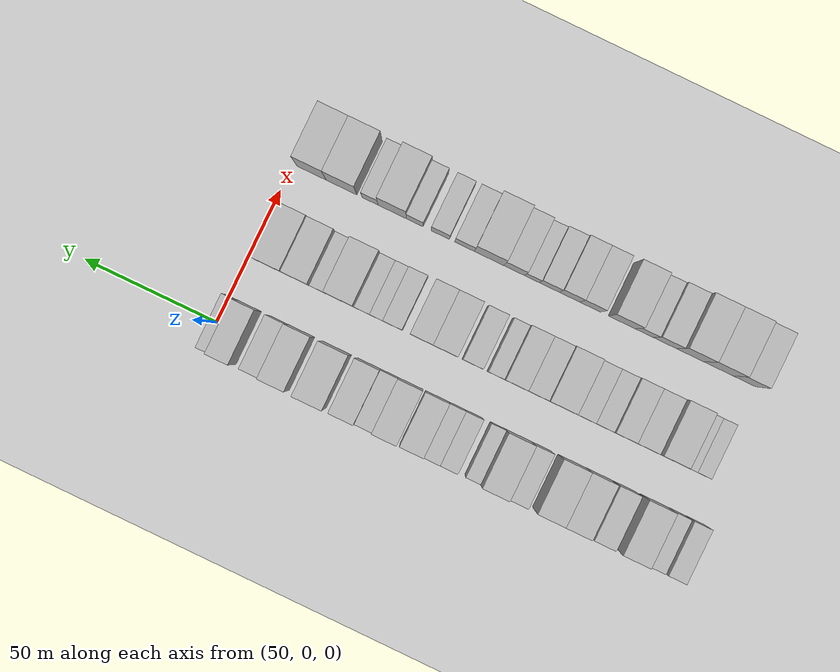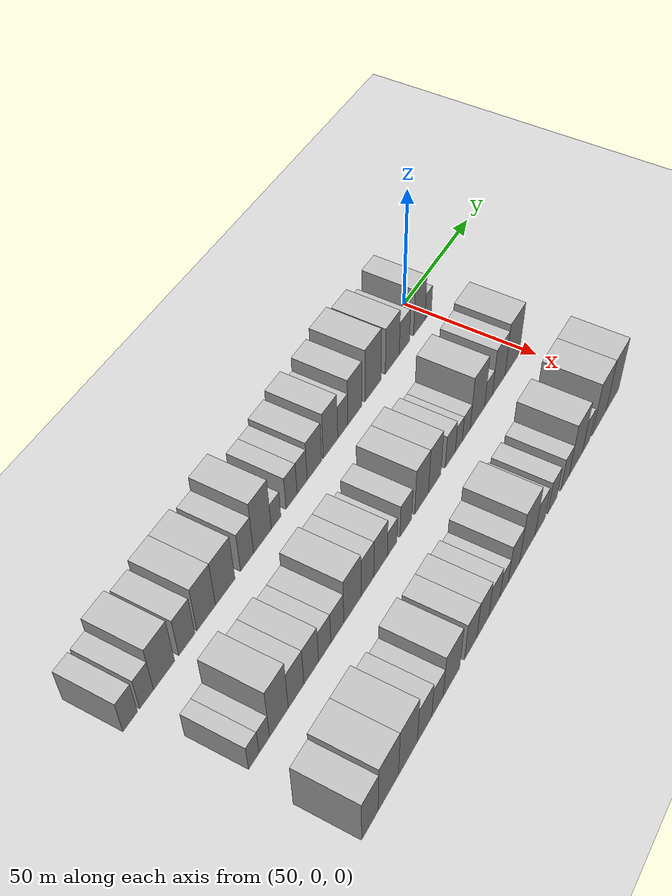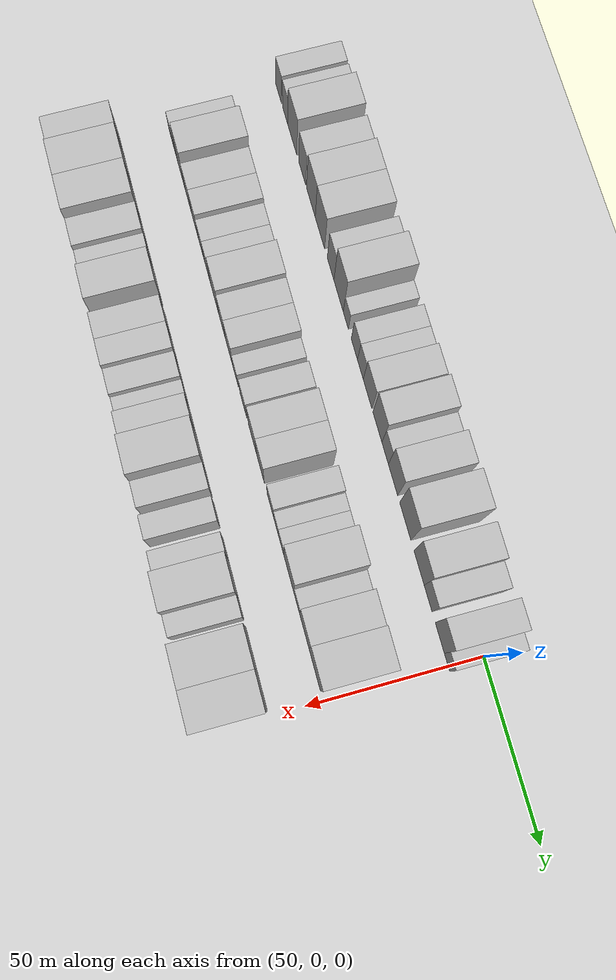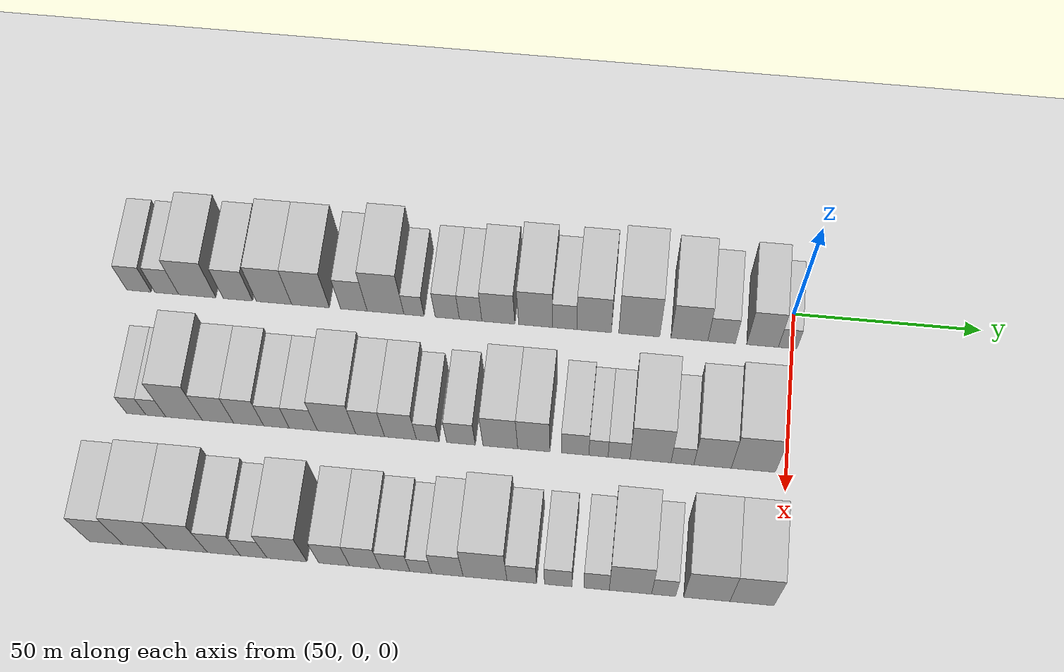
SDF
<sdf version="1.6">
 <world name="default">
  <include><name>ground_plane_1</name><uri>model://HANNAS_ground_plane</uri></include>
  <model name="building_21">
   <static>1</static>
   <pose>50.0000 -176.3457 0 0.000000 0.000000 0.000000</pose>
   <link name="link">
    <pose>0 0 7.50 0 0 0</pose>
    <collision name="collision"><geometry><box><size>20.0000 6.6882 15.0000</size></box></geometry></collision>
    <visual name="visual">
     <cast_shadows>0</cast_shadows>
     <geometry><box><size>20.0000 6.6882 15.0000</size></box></geometry>
     <material>
      <script>
       <uri>model://HANNAS_wall/materials/scripts</uri>
       <uri>model://HANNAS_wall/materials/textures</uri>
       <name>vrc/HANNAS_wall</name>
      </script>
     </material>
    </visual>
   </link>
  </model>
  <model name="building_22">
   <static>1</static>
   <pose>50.0000 -168.7545 0 0.000000 0.000000 0.000000</pose>
   <link name="link">
    <pose>0 0 7.50 0 0 0</pose>
    <collision name="collision"><geometry><box><size>20.0000 6.4942 15.0000</size></box></geometry></collision>
    <visual name="visual">
     <cast_shadows>0</cast_shadows>
     <geometry><box><size>20.0000 6.4942 15.0000</size></box></geometry>
     <material>
      <script>
       <uri>model://HANNAS_wall/materials/scripts</uri>
       <uri>model://HANNAS_wall/materials/textures</uri>
       <name>vrc/HANNAS_wall</name>
      </script>
     </material>
    </visual>
   </link>
  </model>
  <model name="building_23">
   <static>1</static>
   <pose>50.0000 -160.4246 0 0.000000 0.000000 0.000000</pose>
   <link name="link">
    <pose>0 0 10.50 0 0 0</pose>
    <collision name="collision"><geometry><box><size>20.0000 10.1656 21.0000</size></box></geometry></collision>
    <visual name="visual">
     <cast_shadows>0</cast_shadows>
     <geometry><box><size>20.0000 10.1656 21.0000</size></box></geometry>
     <material>
      <script>
       <uri>model://HANNAS_wall/materials/scripts</uri>
       <uri>model://HANNAS_wall/materials/textures</uri>
       <name>vrc/HANNAS_wall</name>
      </script>
     </material>
    </visual>
   </link>
  </model>
  <model name="building_24">
   <static>1</static>
   <pose>50.0000 -149.3165 0 0.000000 0.000000 0.000000</pose>
   <link name="link">
    <pose>0 0 9.00 0 0 0</pose>
    <collision name="collision"><geometry><box><size>20.0000 8.0506 18.0000</size></box></geometry></collision>
    <visual name="visual">
     <cast_shadows>0</cast_shadows>
     <geometry><box><size>20.0000 8.0506 18.0000</size></box></geometry>
     <material>
      <script>
       <uri>model://HANNAS_wall/materials/scripts</uri>
       <uri>model://HANNAS_wall/materials/textures</uri>
       <name>vrc/HANNAS_wall</name>
      </script>
     </material>
    </visual>
   </link>
  </model>
  <model name="building_25">
   <static>1</static>
   <pose>50.0000 -139.4782 0 0.000000 0.000000 0.000000</pose>
   <link name="link">
    <pose>0 0 10.50 0 0 0</pose>
    <collision name="collision"><geometry><box><size>20.0000 9.6259 21.0000</size></box></geometry></collision>
    <visual name="visual">
     <cast_shadows>0</cast_shadows>
     <geometry><box><size>20.0000 9.6259 21.0000</size></box></geometry>
     <material>
      <script>
       <uri>model://HANNAS_wall/materials/scripts</uri>
       <uri>model://HANNAS_wall/materials/textures</uri>
       <name>vrc/HANNAS_wall</name>
      </script>
     </material>
    </visual>
   </link>
  </model>
  <model name="building_26">
   <static>1</static>
   <pose>50.0000 -129.5304 0 0.000000 0.000000 0.000000</pose>
   <link name="link">
    <pose>0 0 10.50 0 0 0</pose>
    <collision name="collision"><geometry><box><size>20.0000 10.2697 21.0000</size></box></geometry></collision>
    <visual name="visual">
     <cast_shadows>0</cast_shadows>
     <geometry><box><size>20.0000 10.2697 21.0000</size></box></geometry>
     <material>
      <script>
       <uri>model://HANNAS_wall/materials/scripts</uri>
       <uri>model://HANNAS_wall/materials/textures</uri>
       <name>vrc/HANNAS_wall</name>
      </script>
     </material>
    </visual>
   </link>
  </model>
  <model name="building_27">
   <static>1</static>
   <pose>50.0000 -117.7776 0 0.000000 0.000000 0.000000</pose>
   <link name="link">
    <pose>0 0 9.00 0 0 0</pose>
    <collision name="collision"><geometry><box><size>20.0000 7.2359 18.0000</size></box></geometry></collision>
    <visual name="visual">
     <cast_shadows>0</cast_shadows>
     <geometry><box><size>20.0000 7.2359 18.0000</size></box></geometry>
     <material>
      <script>
       <uri>model://HANNAS_wall/materials/scripts</uri>
       <uri>model://HANNAS_wall/materials/textures</uri>
       <name>vrc/HANNAS_wall</name>
      </script>
     </material>
    </visual>
   </link>
  </model>
  <model name="building_28">
   <static>1</static>
   <pose>50.0000 -109.1883 0 0.000000 0.000000 0.000000</pose>
   <link name="link">
    <pose>0 0 12.00 0 0 0</pose>
    <collision name="collision"><geometry><box><size>20.0000 9.9427 24.0000</size></box></geometry></collision>
    <visual name="visual">
     <cast_shadows>0</cast_shadows>
     <geometry><box><size>20.0000 9.9427 24.0000</size></box></geometry>
     <material>
      <script>
       <uri>model://HANNAS_wall/materials/scripts</uri>
       <uri>model://HANNAS_wall/materials/textures</uri>
       <name>vrc/HANNAS_wall</name>
      </script>
     </material>
    </visual>
   </link>
  </model>
  <model name="building_29">
   <static>1</static>
   <pose>50.0000 -101.4819 0 0.000000 0.000000 0.000000</pose>
   <link name="link">
    <pose>0 0 6.00 0 0 0</pose>
    <collision name="collision"><geometry><box><size>20.0000 5.4701 12.0000</size></box></geometry></collision>
    <visual name="visual">
     <cast_shadows>0</cast_shadows>
     <geometry><box><size>20.0000 5.4701 12.0000</size></box></geometry>
     <material>
      <script>
       <uri>model://HANNAS_wall/materials/scripts</uri>
       <uri>model://HANNAS_wall/materials/textures</uri>
       <name>vrc/HANNAS_wall</name>
      </script>
     </material>
    </visual>
   </link>
  </model>
  <model name="building_30">
   <static>1</static>
   <pose>50.0000 -92.4810 0 0.000000 0.000000 0.000000</pose>
   <link name="link">
    <pose>0 0 7.50 0 0 0</pose>
    <collision name="collision"><geometry><box><size>20.0000 6.5315 15.0000</size></box></geometry></collision>
    <visual name="visual">
     <cast_shadows>0</cast_shadows>
     <geometry><box><size>20.0000 6.5315 15.0000</size></box></geometry>
     <material>
      <script>
       <uri>model://HANNAS_wall/materials/scripts</uri>
       <uri>model://HANNAS_wall/materials/textures</uri>
       <name>vrc/HANNAS_wall</name>
      </script>
     </material>
    </visual>
   </link>
  </model>
  <model name="building_31">
   <static>1</static>
   <pose>50.0000 -86.1803 0 0.000000 0.000000 0.000000</pose>
   <link name="link">
    <pose>0 0 7.50 0 0 0</pose>
    <collision name="collision"><geometry><box><size>20.0000 6.0698 15.0000</size></box></geometry></collision>
    <visual name="visual">
     <cast_shadows>0</cast_shadows>
     <geometry><box><size>20.0000 6.0698 15.0000</size></box></geometry>
     <material>
      <script>
       <uri>model://HANNAS_wall/materials/scripts</uri>
       <uri>model://HANNAS_wall/materials/textures</uri>
       <name>vrc/HANNAS_wall</name>
      </script>
     </material>
    </visual>
   </link>
  </model>
  <model name="building_32">
   <static>1</static>
   <pose>50.0000 -78.6908 0 0.000000 0.000000 0.000000</pose>
   <link name="link">
    <pose>0 0 9.00 0 0 0</pose>
    <collision name="collision"><geometry><box><size>20.0000 8.9093 18.0000</size></box></geometry></collision>
    <visual name="visual">
     <cast_shadows>0</cast_shadows>
     <geometry><box><size>20.0000 8.9093 18.0000</size></box></geometry>
     <material>
      <script>
       <uri>model://HANNAS_wall/materials/scripts</uri>
       <uri>model://HANNAS_wall/materials/textures</uri>
       <name>vrc/HANNAS_wall</name>
      </script>
     </material>
    </visual>
   </link>
  </model>
  <model name="building_33">
   <static>1</static>
   <pose>50.0000 -68.6561 0 0.000000 0.000000 0.000000</pose>
   <link name="link">
    <pose>0 0 10.50 0 0 0</pose>
    <collision name="collision"><geometry><box><size>20.0000 9.1600 21.0000</size></box></geometry></collision>
    <visual name="visual">
     <cast_shadows>0</cast_shadows>
     <geometry><box><size>20.0000 9.1600 21.0000</size></box></geometry>
     <material>
      <script>
       <uri>model://HANNAS_wall/materials/scripts</uri>
       <uri>model://HANNAS_wall/materials/textures</uri>
       <name>vrc/HANNAS_wall</name>
      </script>
     </material>
    </visual>
   </link>
  </model>
  <model name="building_34">
   <static>1</static>
   <pose>50.0000 -60.8174 0 0.000000 0.000000 0.000000</pose>
   <link name="link">
    <pose>0 0 7.50 0 0 0</pose>
    <collision name="collision"><geometry><box><size>20.0000 6.5175 15.0000</size></box></geometry></collision>
    <visual name="visual">
     <cast_shadows>0</cast_shadows>
     <geometry><box><size>20.0000 6.5175 15.0000</size></box></geometry>
     <material>
      <script>
       <uri>model://HANNAS_wall/materials/scripts</uri>
       <uri>model://HANNAS_wall/materials/textures</uri>
       <name>vrc/HANNAS_wall</name>
      </script>
     </material>
    </visual>
   </link>
  </model>
  <model name="building_35">
   <static>1</static>
   <pose>50.0000 -52.9513 0 0.000000 0.000000 0.000000</pose>
   <link name="link">
    <pose>0 0 10.50 0 0 0</pose>
    <collision name="collision"><geometry><box><size>20.0000 9.2147 21.0000</size></box></geometry></collision>
    <visual name="visual">
     <cast_shadows>0</cast_shadows>
     <geometry><box><size>20.0000 9.2147 21.0000</size></box></geometry>
     <material>
      <script>
       <uri>model://HANNAS_wall/materials/scripts</uri>
       <uri>model://HANNAS_wall/materials/textures</uri>
       <name>vrc/HANNAS_wall</name>
      </script>
     </material>
    </visual>
   </link>
  </model>
  <model name="building_36">
   <static>1</static>
   <pose>50.0000 -40.8622 0 0.000000 0.000000 0.000000</pose>
   <link name="link">
    <pose>0 0 12.00 0 0 0</pose>
    <collision name="collision"><geometry><box><size>20.0000 10.9633 24.0000</size></box></geometry></collision>
    <visual name="visual">
     <cast_shadows>0</cast_shadows>
     <geometry><box><size>20.0000 10.9633 24.0000</size></box></geometry>
     <material>
      <script>
       <uri>model://HANNAS_wall/materials/scripts</uri>
       <uri>model://HANNAS_wall/materials/textures</uri>
       <name>vrc/HANNAS_wall</name>
      </script>
     </material>
    </visual>
   </link>
  </model>
  <model name="building_37">
   <static>1</static>
   <pose>50.0000 -27.4583 0 0.000000 0.000000 0.000000</pose>
   <link name="link">
    <pose>0 0 10.50 0 0 0</pose>
    <collision name="collision"><geometry><box><size>20.0000 9.8445 21.0000</size></box></geometry></collision>
    <visual name="visual">
     <cast_shadows>0</cast_shadows>
     <geometry><box><size>20.0000 9.8445 21.0000</size></box></geometry>
     <material>
      <script>
       <uri>model://HANNAS_wall/materials/scripts</uri>
       <uri>model://HANNAS_wall/materials/textures</uri>
       <name>vrc/HANNAS_wall</name>
      </script>
     </material>
    </visual>
   </link>
  </model>
  <model name="building_38">
   <static>1</static>
   <pose>50.0000 -18.8467 0 0.000000 0.000000 0.000000</pose>
   <link name="link">
    <pose>0 0 7.50 0 0 0</pose>
    <collision name="collision"><geometry><box><size>20.0000 7.3786 15.0000</size></box></geometry></collision>
    <visual name="visual">
     <cast_shadows>0</cast_shadows>
     <geometry><box><size>20.0000 7.3786 15.0000</size></box></geometry>
     <material>
      <script>
       <uri>model://HANNAS_wall/materials/scripts</uri>
       <uri>model://HANNAS_wall/materials/textures</uri>
       <name>vrc/HANNAS_wall</name>
      </script>
     </material>
    </visual>
   </link>
  </model>
  <model name="building_39">
   <static>1</static>
   <pose>50.0000 -7.9230 0 0.000000 0.000000 0.000000</pose>
   <link name="link">
    <pose>0 0 10.50 0 0 0</pose>
    <collision name="collision"><geometry><box><size>20.0000 8.4687 21.0000</size></box></geometry></collision>
    <visual name="visual">
     <cast_shadows>0</cast_shadows>
     <geometry><box><size>20.0000 8.4687 21.0000</size></box></geometry>
     <material>
      <script>
       <uri>model://HANNAS_wall/materials/scripts</uri>
       <uri>model://HANNAS_wall/materials/textures</uri>
       <name>vrc/HANNAS_wall</name>
      </script>
     </material>
    </visual>
   </link>
  </model>
  <model name="building_40">
   <static>1</static>
   <pose>50.0000 -1.2210 0 0.000000 0.000000 0.000000</pose>
   <link name="link">
    <pose>0 0 6.00 0 0 0</pose>
    <collision name="collision"><geometry><box><size>20.0000 4.9352 12.0000</size></box></geometry></collision>
    <visual name="visual">
     <cast_shadows>0</cast_shadows>
     <geometry><box><size>20.0000 4.9352 12.0000</size></box></geometry>
     <material>
      <script>
       <uri>model://HANNAS_wall/materials/scripts</uri>
       <uri>model://HANNAS_wall/materials/textures</uri>
       <name>vrc/HANNAS_wall</name>
      </script>
     </material>
    </visual>
   </link>
  </model>
  <model name="building_100">
   <static>1</static>
   <pose>85.0000 -170.1183 0 0.000000 0.000000 0.000000</pose>
   <link name="link">
    <pose>0 0 6.00 0 0 0</pose>
    <collision name="collision"><geometry><box><size>20.0000 5.1869 12.0000</size></box></geometry></collision>
    <visual name="visual">
     <cast_shadows>0</cast_shadows>
     <geometry><box><size>20.0000 5.1869 12.0000</size></box></geometry>
     <material>
      <script>
       <uri>model://HANNAS_wall/materials/scripts</uri>
       <uri>model://HANNAS_wall/materials/textures</uri>
       <name>vrc/HANNAS_wall</name>
      </script>
     </material>
    </visual>
   </link>
  </model>
  <model name="building_101">
   <static>1</static>
   <pose>85.0000 -164.9028 0 0.000000 0.000000 0.000000</pose>
   <link name="link">
    <pose>0 0 6.00 0 0 0</pose>
    <collision name="collision"><geometry><box><size>20.0000 5.2442 12.0000</size></box></geometry></collision>
    <visual name="visual">
     <cast_shadows>0</cast_shadows>
     <geometry><box><size>20.0000 5.2442 12.0000</size></box></geometry>
     <material>
      <script>
       <uri>model://HANNAS_wall/materials/scripts</uri>
       <uri>model://HANNAS_wall/materials/textures</uri>
       <name>vrc/HANNAS_wall</name>
      </script>
     </material>
    </visual>
   </link>
  </model>
  <model name="building_102">
   <static>1</static>
   <pose>85.0000 -157.4604 0 0.000000 0.000000 0.000000</pose>
   <link name="link">
    <pose>0 0 12.00 0 0 0</pose>
    <collision name="collision"><geometry><box><size>20.0000 9.6405 24.0000</size></box></geometry></collision>
    <visual name="visual">
     <cast_shadows>0</cast_shadows>
     <geometry><box><size>20.0000 9.6405 24.0000</size></box></geometry>
     <material>
      <script>
       <uri>model://HANNAS_wall/materials/scripts</uri>
       <uri>model://HANNAS_wall/materials/textures</uri>
       <name>vrc/HANNAS_wall</name>
      </script>
     </material>
    </visual>
   </link>
  </model>
  <model name="building_103">
   <static>1</static>
   <pose>85.0000 -148.4974 0 0.000000 0.000000 0.000000</pose>
   <link name="link">
    <pose>0 0 9.00 0 0 0</pose>
    <collision name="collision"><geometry><box><size>20.0000 8.2857 18.0000</size></box></geometry></collision>
    <visual name="visual">
     <cast_shadows>0</cast_shadows>
     <geometry><box><size>20.0000 8.2857 18.0000</size></box></geometry>
     <material>
      <script>
       <uri>model://HANNAS_wall/materials/scripts</uri>
       <uri>model://HANNAS_wall/materials/textures</uri>
       <name>vrc/HANNAS_wall</name>
      </script>
     </material>
    </visual>
   </link>
  </model>
  <model name="building_104">
   <static>1</static>
   <pose>85.0000 -140.3771 0 0.000000 0.000000 0.000000</pose>
   <link name="link">
    <pose>0 0 9.00 0 0 0</pose>
    <collision name="collision"><geometry><box><size>20.0000 7.9549 18.0000</size></box></geometry></collision>
    <visual name="visual">
     <cast_shadows>0</cast_shadows>
     <geometry><box><size>20.0000 7.9549 18.0000</size></box></geometry>
     <material>
      <script>
       <uri>model://HANNAS_wall/materials/scripts</uri>
       <uri>model://HANNAS_wall/materials/textures</uri>
       <name>vrc/HANNAS_wall</name>
      </script>
     </material>
    </visual>
   </link>
  </model>
  <model name="building_105">
   <static>1</static>
   <pose>85.0000 -133.0202 0 0.000000 0.000000 0.000000</pose>
   <link name="link">
    <pose>0 0 7.50 0 0 0</pose>
    <collision name="collision"><geometry><box><size>20.0000 6.7589 15.0000</size></box></geometry></collision>
    <visual name="visual">
     <cast_shadows>0</cast_shadows>
     <geometry><box><size>20.0000 6.7589 15.0000</size></box></geometry>
     <material>
      <script>
       <uri>model://HANNAS_wall/materials/scripts</uri>
       <uri>model://HANNAS_wall/materials/textures</uri>
       <name>vrc/HANNAS_wall</name>
      </script>
     </material>
    </visual>
   </link>
  </model>
  <model name="building_106">
   <static>1</static>
   <pose>85.0000 -125.9433 0 0.000000 0.000000 0.000000</pose>
   <link name="link">
    <pose>0 0 7.50 0 0 0</pose>
    <collision name="collision"><geometry><box><size>20.0000 7.3948 15.0000</size></box></geometry></collision>
    <visual name="visual">
     <cast_shadows>0</cast_shadows>
     <geometry><box><size>20.0000 7.3948 15.0000</size></box></geometry>
     <material>
      <script>
       <uri>model://HANNAS_wall/materials/scripts</uri>
       <uri>model://HANNAS_wall/materials/textures</uri>
       <name>vrc/HANNAS_wall</name>
      </script>
     </material>
    </visual>
   </link>
  </model>
  <model name="building_107">
   <static>1</static>
   <pose>85.0000 -117.2077 0 0.000000 0.000000 0.000000</pose>
   <link name="link">
    <pose>0 0 10.50 0 0 0</pose>
    <collision name="collision"><geometry><box><size>20.0000 10.0765 21.0000</size></box></geometry></collision>
    <visual name="visual">
     <cast_shadows>0</cast_shadows>
     <geometry><box><size>20.0000 10.0765 21.0000</size></box></geometry>
     <material>
      <script>
       <uri>model://HANNAS_wall/materials/scripts</uri>
       <uri>model://HANNAS_wall/materials/textures</uri>
       <name>vrc/HANNAS_wall</name>
      </script>
     </material>
    </visual>
   </link>
  </model>
  <model name="building_108">
   <static>1</static>
   <pose>85.0000 -108.3775 0 0.000000 0.000000 0.000000</pose>
   <link name="link">
    <pose>0 0 9.00 0 0 0</pose>
    <collision name="collision"><geometry><box><size>20.0000 7.5838 18.0000</size></box></geometry></collision>
    <visual name="visual">
     <cast_shadows>0</cast_shadows>
     <geometry><box><size>20.0000 7.5838 18.0000</size></box></geometry>
     <material>
      <script>
       <uri>model://HANNAS_wall/materials/scripts</uri>
       <uri>model://HANNAS_wall/materials/textures</uri>
       <name>vrc/HANNAS_wall</name>
      </script>
     </material>
    </visual>
   </link>
  </model>
  <model name="building_109">
   <static>1</static>
   <pose>85.0000 -100.4108 0 0.000000 0.000000 0.000000</pose>
   <link name="link">
    <pose>0 0 9.00 0 0 0</pose>
    <collision name="collision"><geometry><box><size>20.0000 8.3496 18.0000</size></box></geometry></collision>
    <visual name="visual">
     <cast_shadows>0</cast_shadows>
     <geometry><box><size>20.0000 8.3496 18.0000</size></box></geometry>
     <material>
      <script>
       <uri>model://HANNAS_wall/materials/scripts</uri>
       <uri>model://HANNAS_wall/materials/textures</uri>
       <name>vrc/HANNAS_wall</name>
      </script>
     </material>
    </visual>
   </link>
  </model>
  <model name="building_110">
   <static>1</static>
   <pose>85.0000 -93.2630 0 0.000000 0.000000 0.000000</pose>
   <link name="link">
    <pose>0 0 6.00 0 0 0</pose>
    <collision name="collision"><geometry><box><size>20.0000 5.9460 12.0000</size></box></geometry></collision>
    <visual name="visual">
     <cast_shadows>0</cast_shadows>
     <geometry><box><size>20.0000 5.9460 12.0000</size></box></geometry>
     <material>
      <script>
       <uri>model://HANNAS_wall/materials/scripts</uri>
       <uri>model://HANNAS_wall/materials/textures</uri>
       <name>vrc/HANNAS_wall</name>
      </script>
     </material>
    </visual>
   </link>
  </model>
  <model name="building_111">
   <static>1</static>
   <pose>85.0000 -84.5407 0 0.000000 0.000000 0.000000</pose>
   <link name="link">
    <pose>0 0 7.50 0 0 0</pose>
    <collision name="collision"><geometry><box><size>20.0000 7.4987 15.0000</size></box></geometry></collision>
    <visual name="visual">
     <cast_shadows>0</cast_shadows>
     <geometry><box><size>20.0000 7.4987 15.0000</size></box></geometry>
     <material>
      <script>
       <uri>model://HANNAS_wall/materials/scripts</uri>
       <uri>model://HANNAS_wall/materials/textures</uri>
       <name>vrc/HANNAS_wall</name>
      </script>
     </material>
    </visual>
   </link>
  </model>
  <model name="building_112">
   <static>1</static>
   <pose>85.0000 -74.2631 0 0.000000 0.000000 0.000000</pose>
   <link name="link">
    <pose>0 0 10.50 0 0 0</pose>
    <collision name="collision"><geometry><box><size>20.0000 9.0566 21.0000</size></box></geometry></collision>
    <visual name="visual">
     <cast_shadows>0</cast_shadows>
     <geometry><box><size>20.0000 9.0566 21.0000</size></box></geometry>
     <material>
      <script>
       <uri>model://HANNAS_wall/materials/scripts</uri>
       <uri>model://HANNAS_wall/materials/textures</uri>
       <name>vrc/HANNAS_wall</name>
      </script>
     </material>
    </visual>
   </link>
  </model>
  <model name="building_113">
   <static>1</static>
   <pose>85.0000 -65.5272 0 0.000000 0.000000 0.000000</pose>
   <link name="link">
    <pose>0 0 10.50 0 0 0</pose>
    <collision name="collision"><geometry><box><size>20.0000 8.4151 21.0000</size></box></geometry></collision>
    <visual name="visual">
     <cast_shadows>0</cast_shadows>
     <geometry><box><size>20.0000 8.4151 21.0000</size></box></geometry>
     <material>
      <script>
       <uri>model://HANNAS_wall/materials/scripts</uri>
       <uri>model://HANNAS_wall/materials/textures</uri>
       <name>vrc/HANNAS_wall</name>
      </script>
     </material>
    </visual>
   </link>
  </model>
  <model name="building_114">
   <static>1</static>
   <pose>85.0000 -54.7490 0 0.000000 0.000000 0.000000</pose>
   <link name="link">
    <pose>0 0 7.50 0 0 0</pose>
    <collision name="collision"><geometry><box><size>20.0000 7.1412 15.0000</size></box></geometry></collision>
    <visual name="visual">
     <cast_shadows>0</cast_shadows>
     <geometry><box><size>20.0000 7.1412 15.0000</size></box></geometry>
     <material>
      <script>
       <uri>model://HANNAS_wall/materials/scripts</uri>
       <uri>model://HANNAS_wall/materials/textures</uri>
       <name>vrc/HANNAS_wall</name>
      </script>
     </material>
    </visual>
   </link>
  </model>
  <model name="building_115">
   <static>1</static>
   <pose>85.0000 -48.6995 0 0.000000 0.000000 0.000000</pose>
   <link name="link">
    <pose>0 0 6.00 0 0 0</pose>
    <collision name="collision"><geometry><box><size>20.0000 4.9579 12.0000</size></box></geometry></collision>
    <visual name="visual">
     <cast_shadows>0</cast_shadows>
     <geometry><box><size>20.0000 4.9579 12.0000</size></box></geometry>
     <material>
      <script>
       <uri>model://HANNAS_wall/materials/scripts</uri>
       <uri>model://HANNAS_wall/materials/textures</uri>
       <name>vrc/HANNAS_wall</name>
      </script>
     </material>
    </visual>
   </link>
  </model>
  <model name="building_116">
   <static>1</static>
   <pose>85.0000 -43.3598 0 0.000000 0.000000 0.000000</pose>
   <link name="link">
    <pose>0 0 6.00 0 0 0</pose>
    <collision name="collision"><geometry><box><size>20.0000 5.7215 12.0000</size></box></geometry></collision>
    <visual name="visual">
     <cast_shadows>0</cast_shadows>
     <geometry><box><size>20.0000 5.7215 12.0000</size></box></geometry>
     <material>
      <script>
       <uri>model://HANNAS_wall/materials/scripts</uri>
       <uri>model://HANNAS_wall/materials/textures</uri>
       <name>vrc/HANNAS_wall</name>
      </script>
     </material>
    </visual>
   </link>
  </model>
  <model name="building_117">
   <static>1</static>
   <pose>85.0000 -35.1960 0 0.000000 0.000000 0.000000</pose>
   <link name="link">
    <pose>0 0 12.00 0 0 0</pose>
    <collision name="collision"><geometry><box><size>20.0000 10.6061 24.0000</size></box></geometry></collision>
    <visual name="visual">
     <cast_shadows>0</cast_shadows>
     <geometry><box><size>20.0000 10.6061 24.0000</size></box></geometry>
     <material>
      <script>
       <uri>model://HANNAS_wall/materials/scripts</uri>
       <uri>model://HANNAS_wall/materials/textures</uri>
       <name>vrc/HANNAS_wall</name>
      </script>
     </material>
    </visual>
   </link>
  </model>
  <model name="building_118">
   <static>1</static>
   <pose>85.0000 -26.9255 0 0.000000 0.000000 0.000000</pose>
   <link name="link">
    <pose>0 0 6.00 0 0 0</pose>
    <collision name="collision"><geometry><box><size>20.0000 5.9349 12.0000</size></box></geometry></collision>
    <visual name="visual">
     <cast_shadows>0</cast_shadows>
     <geometry><box><size>20.0000 5.9349 12.0000</size></box></geometry>
     <material>
      <script>
       <uri>model://HANNAS_wall/materials/scripts</uri>
       <uri>model://HANNAS_wall/materials/textures</uri>
       <name>vrc/HANNAS_wall</name>
      </script>
     </material>
    </visual>
   </link>
  </model>
  <model name="building_119">
   <static>1</static>
   <pose>85.0000 -19.1169 0 0.000000 0.000000 0.000000</pose>
   <link name="link">
    <pose>0 0 10.50 0 0 0</pose>
    <collision name="collision"><geometry><box><size>20.0000 9.6822 21.0000</size></box></geometry></collision>
    <visual name="visual">
     <cast_shadows>0</cast_shadows>
     <geometry><box><size>20.0000 9.6822 21.0000</size></box></geometry>
     <material>
      <script>
       <uri>model://HANNAS_wall/materials/scripts</uri>
       <uri>model://HANNAS_wall/materials/textures</uri>
       <name>vrc/HANNAS_wall</name>
      </script>
     </material>
    </visual>
   </link>
  </model>
  <model name="building_120">
   <static>1</static>
   <pose>85.0000 -8.5849 0 0.000000 0.000000 0.000000</pose>
   <link name="link">
    <pose>0 0 12.00 0 0 0</pose>
    <collision name="collision"><geometry><box><size>20.0000 11.3818 24.0000</size></box></geometry></collision>
    <visual name="visual">
     <cast_shadows>0</cast_shadows>
     <geometry><box><size>20.0000 11.3818 24.0000</size></box></geometry>
     <material>
      <script>
       <uri>model://HANNAS_wall/materials/scripts</uri>
       <uri>model://HANNAS_wall/materials/textures</uri>
       <name>vrc/HANNAS_wall</name>
      </script>
     </material>
    </visual>
   </link>
  </model>
  <model name="building_184">
   <static>1</static>
   <pose>120.0000 -170.8666 0 0.000000 0.000000 0.000000</pose>
   <link name="link">
    <pose>0 0 10.50 0 0 0</pose>
    <collision name="collision"><geometry><box><size>20.0000 8.7274 21.0000</size></box></geometry></collision>
    <visual name="visual">
     <cast_shadows>0</cast_shadows>
     <geometry><box><size>20.0000 8.7274 21.0000</size></box></geometry>
     <material>
      <script>
       <uri>model://HANNAS_wall/materials/scripts</uri>
       <uri>model://HANNAS_wall/materials/textures</uri>
       <name>vrc/HANNAS_wall</name>
      </script>
     </material>
    </visual>
   </link>
  </model>
  <model name="building_185">
   <static>1</static>
   <pose>120.0000 -160.9762 0 0.000000 0.000000 0.000000</pose>
   <link name="link">
    <pose>0 0 12.00 0 0 0</pose>
    <collision name="collision"><geometry><box><size>20.0000 11.0533 24.0000</size></box></geometry></collision>
    <visual name="visual">
     <cast_shadows>0</cast_shadows>
     <geometry><box><size>20.0000 11.0533 24.0000</size></box></geometry>
     <material>
      <script>
       <uri>model://HANNAS_wall/materials/scripts</uri>
       <uri>model://HANNAS_wall/materials/textures</uri>
       <name>vrc/HANNAS_wall</name>
      </script>
     </material>
    </visual>
   </link>
  </model>
  <model name="building_186">
   <static>1</static>
   <pose>120.0000 -150.1674 0 0.000000 0.000000 0.000000</pose>
   <link name="link">
    <pose>0 0 12.00 0 0 0</pose>
    <collision name="collision"><geometry><box><size>20.0000 10.5644 24.0000</size></box></geometry></collision>
    <visual name="visual">
     <cast_shadows>0</cast_shadows>
     <geometry><box><size>20.0000 10.5644 24.0000</size></box></geometry>
     <material>
      <script>
       <uri>model://HANNAS_wall/materials/scripts</uri>
       <uri>model://HANNAS_wall/materials/textures</uri>
       <name>vrc/HANNAS_wall</name>
      </script>
     </material>
    </visual>
   </link>
  </model>
  <model name="building_187">
   <static>1</static>
   <pose>120.0000 -140.6744 0 0.000000 0.000000 0.000000</pose>
   <link name="link">
    <pose>0 0 9.00 0 0 0</pose>
    <collision name="collision"><geometry><box><size>20.0000 8.4217 18.0000</size></box></geometry></collision>
    <visual name="visual">
     <cast_shadows>0</cast_shadows>
     <geometry><box><size>20.0000 8.4217 18.0000</size></box></geometry>
     <material>
      <script>
       <uri>model://HANNAS_wall/materials/scripts</uri>
       <uri>model://HANNAS_wall/materials/textures</uri>
       <name>vrc/HANNAS_wall</name>
      </script>
     </material>
    </visual>
   </link>
  </model>
  <model name="building_188">
   <static>1</static>
   <pose>120.0000 -133.0510 0 0.000000 0.000000 0.000000</pose>
   <link name="link">
    <pose>0 0 7.50 0 0 0</pose>
    <collision name="collision"><geometry><box><size>20.0000 6.8250 15.0000</size></box></geometry></collision>
    <visual name="visual">
     <cast_shadows>0</cast_shadows>
     <geometry><box><size>20.0000 6.8250 15.0000</size></box></geometry>
     <material>
      <script>
       <uri>model://HANNAS_wall/materials/scripts</uri>
       <uri>model://HANNAS_wall/materials/textures</uri>
       <name>vrc/HANNAS_wall</name>
      </script>
     </material>
    </visual>
   </link>
  </model>
  <model name="building_189">
   <static>1</static>
   <pose>120.0000 -124.5444 0 0.000000 0.000000 0.000000</pose>
   <link name="link">
    <pose>0 0 10.50 0 0 0</pose>
    <collision name="collision"><geometry><box><size>20.0000 10.1882 21.0000</size></box></geometry></collision>
    <visual name="visual">
     <cast_shadows>0</cast_shadows>
     <geometry><box><size>20.0000 10.1882 21.0000</size></box></geometry>
     <material>
      <script>
       <uri>model://HANNAS_wall/materials/scripts</uri>
       <uri>model://HANNAS_wall/materials/textures</uri>
       <name>vrc/HANNAS_wall</name>
      </script>
     </material>
    </visual>
   </link>
  </model>
  <model name="building_190">
   <static>1</static>
   <pose>120.0000 -112.5110 0 0.000000 0.000000 0.000000</pose>
   <link name="link">
    <pose>0 0 9.00 0 0 0</pose>
    <collision name="collision"><geometry><box><size>20.0000 7.8787 18.0000</size></box></geometry></collision>
    <visual name="visual">
     <cast_shadows>0</cast_shadows>
     <geometry><box><size>20.0000 7.8787 18.0000</size></box></geometry>
     <material>
      <script>
       <uri>model://HANNAS_wall/materials/scripts</uri>
       <uri>model://HANNAS_wall/materials/textures</uri>
       <name>vrc/HANNAS_wall</name>
      </script>
     </material>
    </visual>
   </link>
  </model>
  <model name="building_191">
   <static>1</static>
   <pose>120.0000 -104.6727 0 0.000000 0.000000 0.000000</pose>
   <link name="link">
    <pose>0 0 9.00 0 0 0</pose>
    <collision name="collision"><geometry><box><size>20.0000 7.7978 18.0000</size></box></geometry></collision>
    <visual name="visual">
     <cast_shadows>0</cast_shadows>
     <geometry><box><size>20.0000 7.7978 18.0000</size></box></geometry>
     <material>
      <script>
       <uri>model://HANNAS_wall/materials/scripts</uri>
       <uri>model://HANNAS_wall/materials/textures</uri>
       <name>vrc/HANNAS_wall</name>
      </script>
     </material>
    </visual>
   </link>
  </model>
  <model name="building_192">
   <static>1</static>
   <pose>120.0000 -97.0414 0 0.000000 0.000000 0.000000</pose>
   <link name="link">
    <pose>0 0 7.50 0 0 0</pose>
    <collision name="collision"><geometry><box><size>20.0000 7.4646 15.0000</size></box></geometry></collision>
    <visual name="visual">
     <cast_shadows>0</cast_shadows>
     <geometry><box><size>20.0000 7.4646 15.0000</size></box></geometry>
     <material>
      <script>
       <uri>model://HANNAS_wall/materials/scripts</uri>
       <uri>model://HANNAS_wall/materials/textures</uri>
       <name>vrc/HANNAS_wall</name>
      </script>
     </material>
    </visual>
   </link>
  </model>
  <model name="building_193">
   <static>1</static>
   <pose>120.0000 -90.4953 0 0.000000 0.000000 0.000000</pose>
   <link name="link">
    <pose>0 0 6.00 0 0 0</pose>
    <collision name="collision"><geometry><box><size>20.0000 5.6277 12.0000</size></box></geometry></collision>
    <visual name="visual">
     <cast_shadows>0</cast_shadows>
     <geometry><box><size>20.0000 5.6277 12.0000</size></box></geometry>
     <material>
      <script>
       <uri>model://HANNAS_wall/materials/scripts</uri>
       <uri>model://HANNAS_wall/materials/textures</uri>
       <name>vrc/HANNAS_wall</name>
      </script>
     </material>
    </visual>
   </link>
  </model>
  <model name="building_194">
   <static>1</static>
   <pose>120.0000 -83.7222 0 0.000000 0.000000 0.000000</pose>
   <link name="link">
    <pose>0 0 9.00 0 0 0</pose>
    <collision name="collision"><geometry><box><size>20.0000 7.9184 18.0000</size></box></geometry></collision>
    <visual name="visual">
     <cast_shadows>0</cast_shadows>
     <geometry><box><size>20.0000 7.9184 18.0000</size></box></geometry>
     <material>
      <script>
       <uri>model://HANNAS_wall/materials/scripts</uri>
       <uri>model://HANNAS_wall/materials/textures</uri>
       <name>vrc/HANNAS_wall</name>
      </script>
     </material>
    </visual>
   </link>
  </model>
  <model name="building_195">
   <static>1</static>
   <pose>120.0000 -74.2330 0 0.000000 0.000000 0.000000</pose>
   <link name="link">
    <pose>0 0 12.00 0 0 0</pose>
    <collision name="collision"><geometry><box><size>20.0000 11.0600 24.0000</size></box></geometry></collision>
    <visual name="visual">
     <cast_shadows>0</cast_shadows>
     <geometry><box><size>20.0000 11.0600 24.0000</size></box></geometry>
     <material>
      <script>
       <uri>model://HANNAS_wall/materials/scripts</uri>
       <uri>model://HANNAS_wall/materials/textures</uri>
       <name>vrc/HANNAS_wall</name>
      </script>
     </material>
    </visual>
   </link>
  </model>
  <model name="building_196">
   <static>1</static>
   <pose>120.0000 -64.9610 0 0.000000 0.000000 0.000000</pose>
   <link name="link">
    <pose>0 0 7.50 0 0 0</pose>
    <collision name="collision"><geometry><box><size>20.0000 7.4841 15.0000</size></box></geometry></collision>
    <visual name="visual">
     <cast_shadows>0</cast_shadows>
     <geometry><box><size>20.0000 7.4841 15.0000</size></box></geometry>
     <material>
      <script>
       <uri>model://HANNAS_wall/materials/scripts</uri>
       <uri>model://HANNAS_wall/materials/textures</uri>
       <name>vrc/HANNAS_wall</name>
      </script>
     </material>
    </visual>
   </link>
  </model>
  <model name="building_197">
   <static>1</static>
   <pose>120.0000 -55.7752 0 0.000000 0.000000 0.000000</pose>
   <link name="link">
    <pose>0 0 7.50 0 0 0</pose>
    <collision name="collision"><geometry><box><size>20.0000 6.8874 15.0000</size></box></geometry></collision>
    <visual name="visual">
     <cast_shadows>0</cast_shadows>
     <geometry><box><size>20.0000 6.8874 15.0000</size></box></geometry>
     <material>
      <script>
       <uri>model://HANNAS_wall/materials/scripts</uri>
       <uri>model://HANNAS_wall/materials/textures</uri>
       <name>vrc/HANNAS_wall</name>
      </script>
     </material>
    </visual>
   </link>
  </model>
  <model name="building_198">
   <static>1</static>
   <pose>120.0000 -46.1354 0 0.000000 0.000000 0.000000</pose>
   <link name="link">
    <pose>0 0 7.50 0 0 0</pose>
    <collision name="collision"><geometry><box><size>20.0000 6.3923 15.0000</size></box></geometry></collision>
    <visual name="visual">
     <cast_shadows>0</cast_shadows>
     <geometry><box><size>20.0000 6.3923 15.0000</size></box></geometry>
     <material>
      <script>
       <uri>model://HANNAS_wall/materials/scripts</uri>
       <uri>model://HANNAS_wall/materials/textures</uri>
       <name>vrc/HANNAS_wall</name>
      </script>
     </material>
    </visual>
   </link>
  </model>
  <model name="building_199">
   <static>1</static>
   <pose>120.0000 -37.6075 0 0.000000 0.000000 0.000000</pose>
   <link name="link">
    <pose>0 0 12.00 0 0 0</pose>
    <collision name="collision"><geometry><box><size>20.0000 10.6635 24.0000</size></box></geometry></collision>
    <visual name="visual">
     <cast_shadows>0</cast_shadows>
     <geometry><box><size>20.0000 10.6635 24.0000</size></box></geometry>
     <material>
      <script>
       <uri>model://HANNAS_wall/materials/scripts</uri>
       <uri>model://HANNAS_wall/materials/textures</uri>
       <name>vrc/HANNAS_wall</name>
      </script>
     </material>
    </visual>
   </link>
  </model>
  <model name="building_200">
   <static>1</static>
   <pose>120.0000 -29.2565 0 0.000000 0.000000 0.000000</pose>
   <link name="link">
    <pose>0 0 7.50 0 0 0</pose>
    <collision name="collision"><geometry><box><size>20.0000 6.0384 15.0000</size></box></geometry></collision>
    <visual name="visual">
     <cast_shadows>0</cast_shadows>
     <geometry><box><size>20.0000 6.0384 15.0000</size></box></geometry>
     <material>
      <script>
       <uri>model://HANNAS_wall/materials/scripts</uri>
       <uri>model://HANNAS_wall/materials/textures</uri>
       <name>vrc/HANNAS_wall</name>
      </script>
     </material>
    </visual>
   </link>
  </model>
  <model name="building_201">
   <static>1</static>
   <pose>120.0000 -18.4374 0 0.000000 0.000000 0.000000</pose>
   <link name="link">
    <pose>0 0 12.00 0 0 0</pose>
    <collision name="collision"><geometry><box><size>20.0000 11.5998 24.0000</size></box></geometry></collision>
    <visual name="visual">
     <cast_shadows>0</cast_shadows>
     <geometry><box><size>20.0000 11.5998 24.0000</size></box></geometry>
     <material>
      <script>
       <uri>model://HANNAS_wall/materials/scripts</uri>
       <uri>model://HANNAS_wall/materials/textures</uri>
       <name>vrc/HANNAS_wall</name>
      </script>
     </material>
    </visual>
   </link>
  </model>
  <model name="building_202">
   <static>1</static>
   <pose>120.0000 -7.1170 0 0.000000 0.000000 0.000000</pose>
   <link name="link">
    <pose>0 0 12.00 0 0 0</pose>
    <collision name="collision"><geometry><box><size>20.0000 11.0409 24.0000</size></box></geometry></collision>
    <visual name="visual">
     <cast_shadows>0</cast_shadows>
     <geometry><box><size>20.0000 11.0409 24.0000</size></box></geometry>
     <material>
      <script>
       <uri>model://HANNAS_wall/materials/scripts</uri>
       <uri>model://HANNAS_wall/materials/textures</uri>
       <name>vrc/HANNAS_wall</name>
      </script>
     </material>
    </visual>
   </link>
  </model>
 </world>
</sdf>
